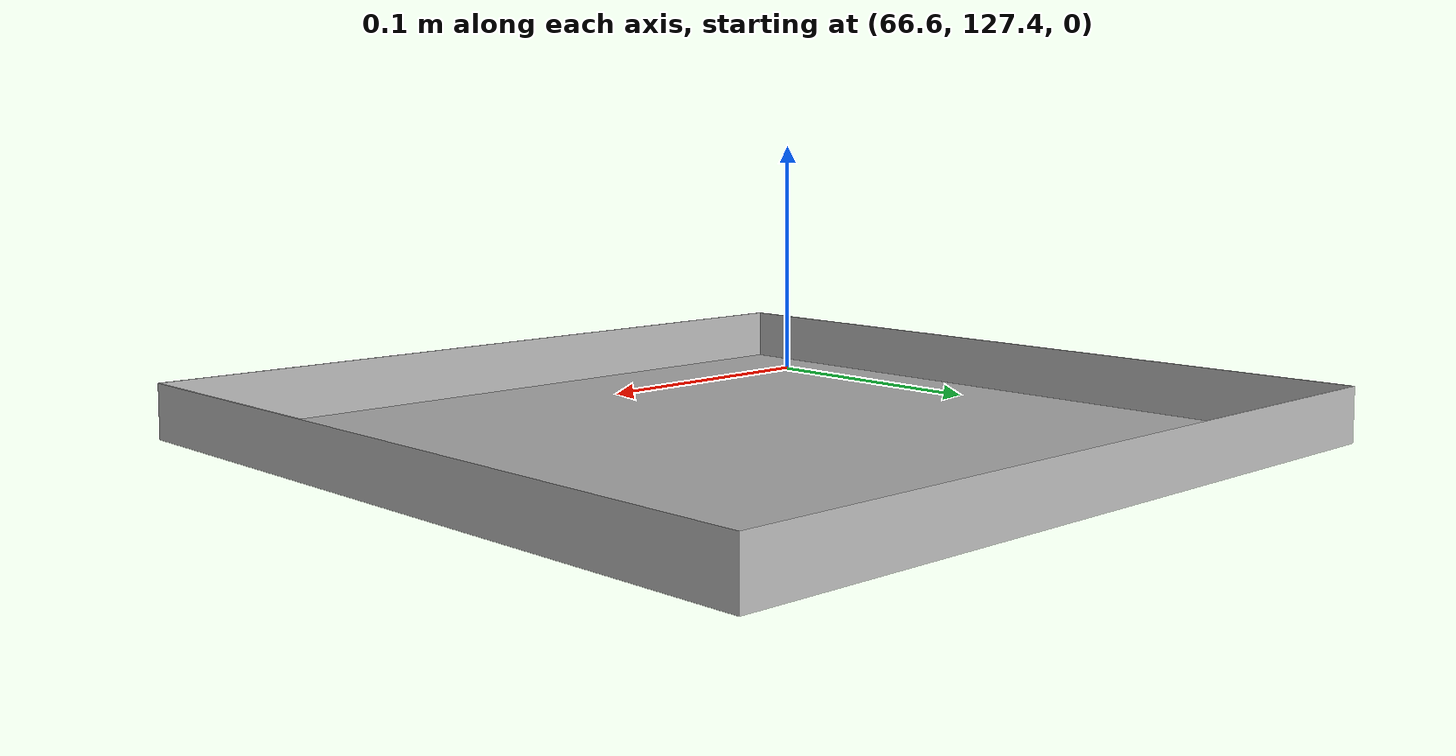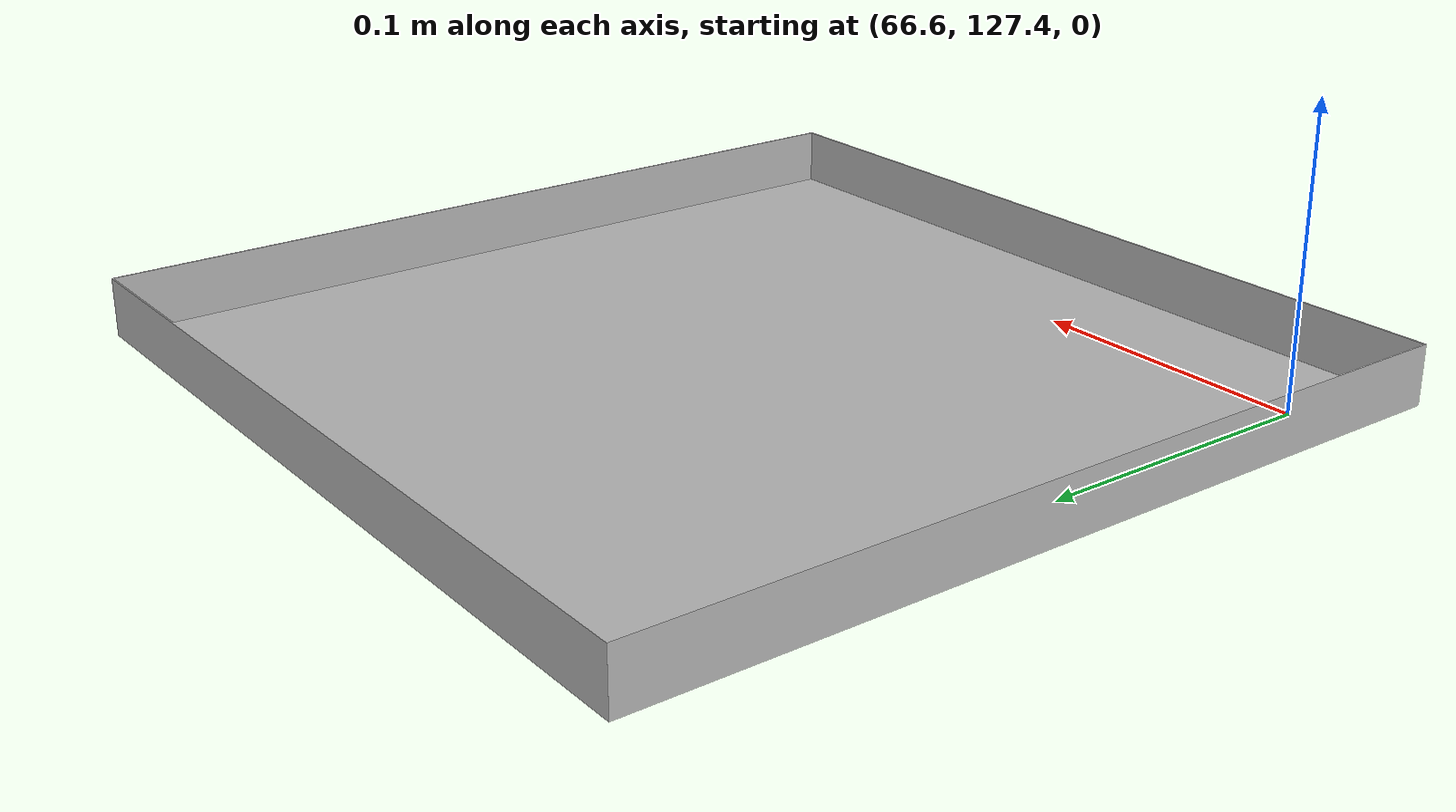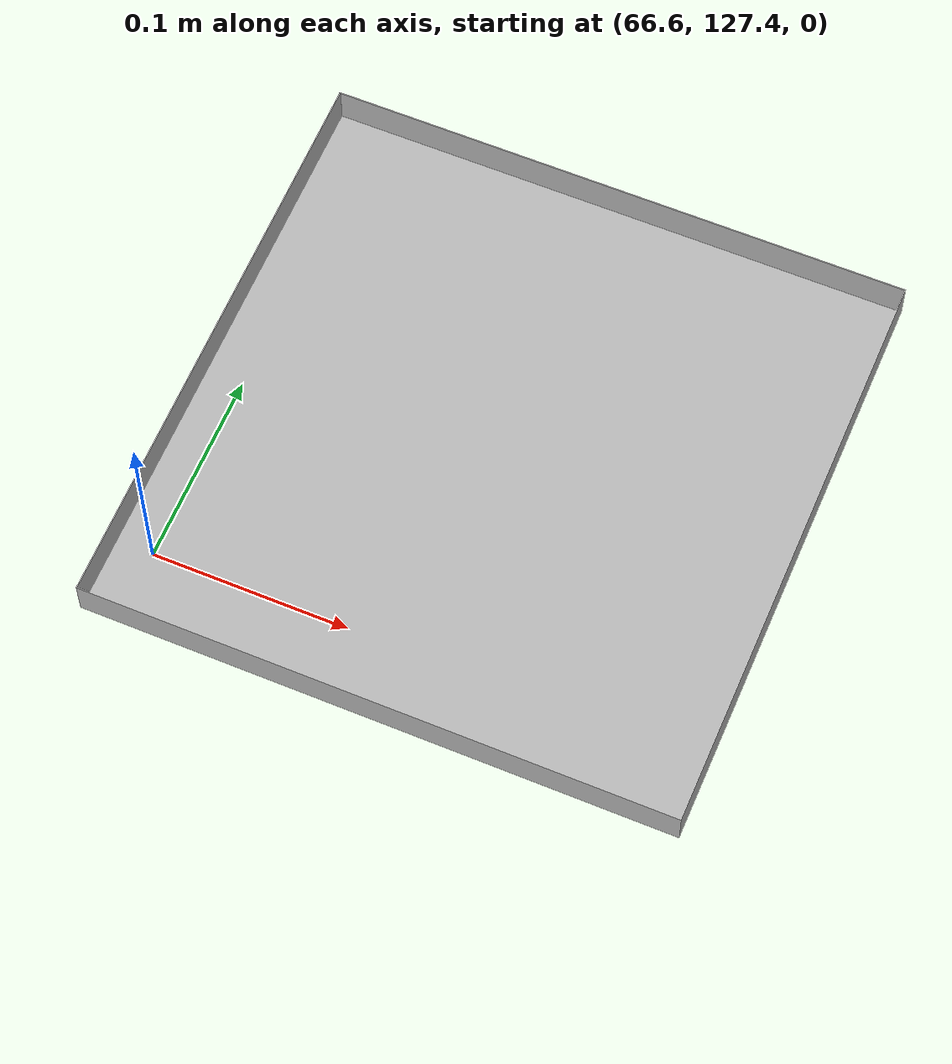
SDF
<?xml version='1.0'?>
<sdf version='1.7'>
  <model name='Simulation Table'>
    <static>1</static>
    <link name='link'>
      <collision name='collision'>
        <geometry>
          <mesh>
            <uri>model://SimTable/meshes/SimTable.stl</uri>
          </mesh>
          <surface>
            <friction>
              <ode>
                <mu>1.2</mu>
                <mu2>1.2</mu2>
              </ode>
            </friction>
          </surface>
        </geometry>
      </collision>
      <visual name='visual'>
        <geometry>
          <mesh>
            <uri>model://SimTable/meshes/SimTable.dae</uri>
          </mesh>
        </geometry>
        <material>
          <script>
            <uri>model://SimTable/materials/textures/</uri>
            <name>SimTable</name>
          </script>
        </material>
      </visual>
    </link>
    <pose>66.5804 127.362 0 0 -0 0</pose>
    <static>1</static>
    <allow_auto_disable>1</allow_auto_disable>
  </model>
</sdf>
